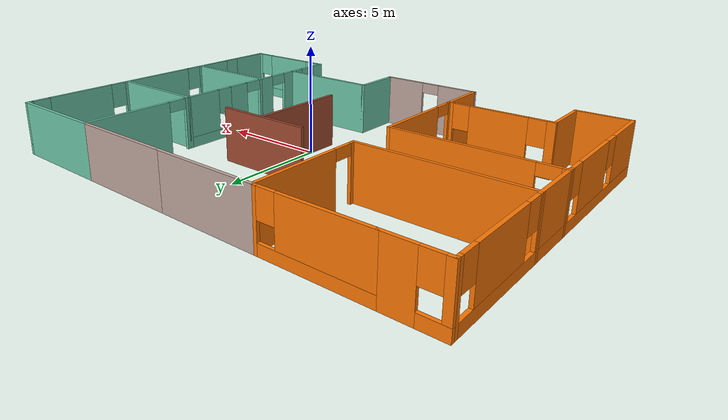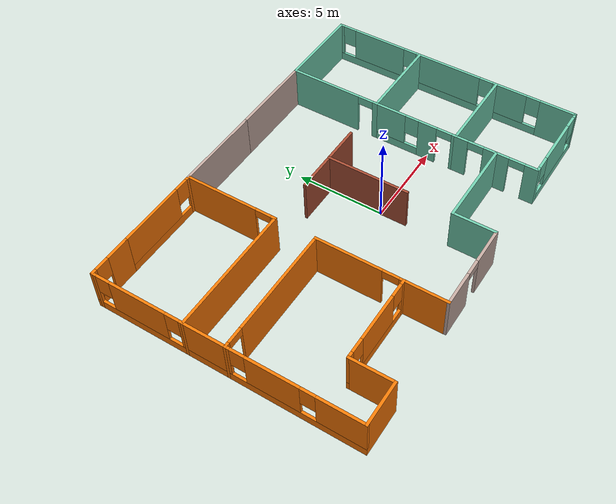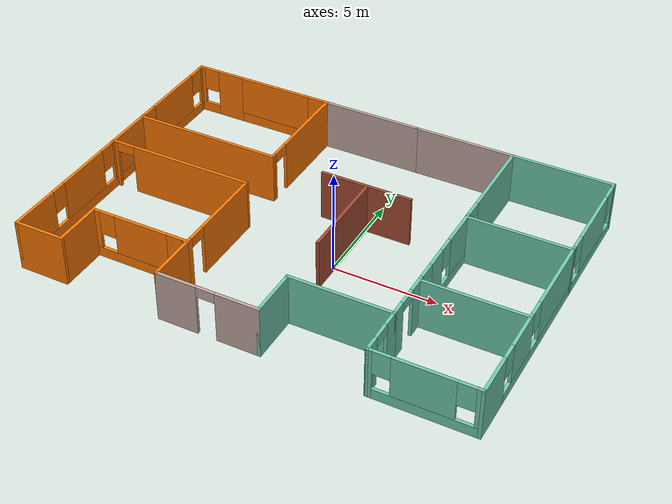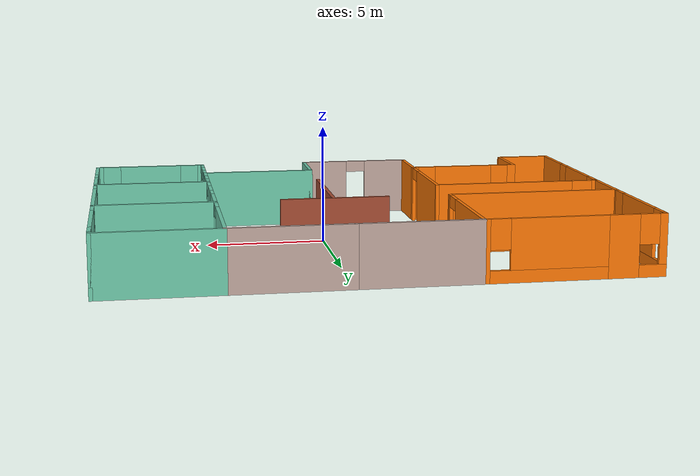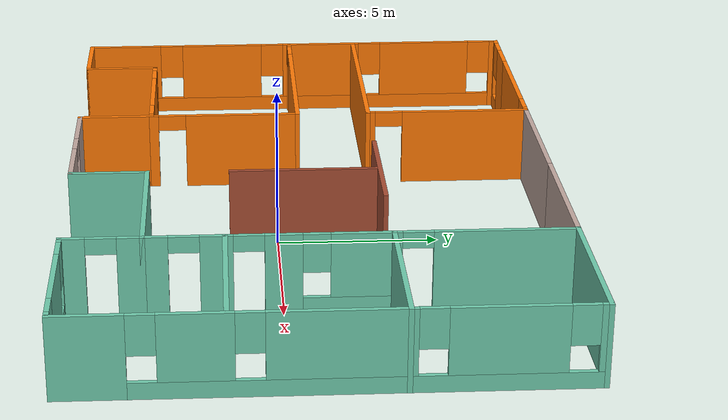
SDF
<?xml version='1.0'?>
<sdf version='1.6'>
  <model name='World_1'>
    <pose frame=''>-1.185 1.055 0 0 -0 0</pose>
    <link name='Wall_10'>
      <pose frame=''>6.025 -3.9 0 0 -0 1.5708</pose>
      <visual name='Wall_10_Visual_0'>
        <pose frame=''>-0.849577 0 1.25 0 -0 0</pose>
        <geometry>
          <box>
            <size>0.800846 0.15 2.5</size>
          </box>
        </geometry>
        <material>
          <script>
            <uri>file://media/materials/scripts/gazebo.material</uri>
            <name>Gazebo/Grey</name>
          </script>
          <ambient>0.435294 0.796078 0.67451 1</ambient>
        </material>
        <meta>
          <layer>0</layer>
        </meta>
      </visual>
      <collision name='Wall_10_Collision_0'>
        <geometry>
          <box>
            <size>0.800846 0.15 2.5</size>
          </box>
        </geometry>
        <pose frame=''>-0.849577 0 1.25 0 -0 0</pose>
      </collision>
      <visual name='Wall_10_Visual_1'>
        <pose frame=''>0.850423 0 1.25 0 -0 0</pose>
        <geometry>
          <box>
            <size>0.799154 0.15 2.5</size>
          </box>
        </geometry>
        <material>
          <script>
            <uri>file://media/materials/scripts/gazebo.material</uri>
            <name>Gazebo/Grey</name>
          </script>
          <ambient>0.435294 0.796078 0.67451 1</ambient>
        </material>
        <meta>
          <layer>0</layer>
        </meta>
      </visual>
      <collision name='Wall_10_Collision_1'>
        <geometry>
          <box>
            <size>0.799154 0.15 2.5</size>
          </box>
        </geometry>
        <pose frame=''>0.850423 0 1.25 0 -0 0</pose>
      </collision>
      <visual name='Wall_10_Visual_2'>
        <pose frame=''>0.000846 0 2.25 0 -0 0</pose>
        <geometry>
          <box>
            <size>0.9 0.15 0.5</size>
          </box>
        </geometry>
        <material>
          <script>
            <uri>file://media/materials/scripts/gazebo.material</uri>
            <name>Gazebo/Grey</name>
          </script>
          <ambient>0.435294 0.796078 0.67451 1</ambient>
        </material>
        <meta>
          <layer>0</layer>
        </meta>
      </visual>
      <collision name='Wall_10_Collision_2'>
        <geometry>
          <box>
            <size>0.9 0.15 0.5</size>
          </box>
        </geometry>
        <pose frame=''>0.000846 0 2.25 0 -0 0</pose>
      </collision>
    </link>
    <link name='Wall_11'>
      <collision name='Wall_11_Collision'>
        <geometry>
          <box>
            <size>5 0.15 2.5</size>
          </box>
        </geometry>
        <pose frame=''>0 0 1.25 0 -0 0</pose>
      </collision>
      <visual name='Wall_11_Visual'>
        <pose frame=''>0 0 1.25 0 -0 0</pose>
        <geometry>
          <box>
            <size>5 0.15 2.5</size>
          </box>
        </geometry>
        <material>
          <script>
            <uri>file://media/materials/scripts/gazebo.material</uri>
            <name>Gazebo/Grey</name>
          </script>
          <ambient>0.435294 0.796078 0.67451 1</ambient>
        </material>
        <meta>
          <layer>0</layer>
        </meta>
      </visual>
      <pose frame=''>8.45 -2.725 0 0 -0 0</pose>
    </link>
    <link name='Wall_13'>
      <pose frame=''>6.025 -0.3 0 0 -0 1.5708</pose>
      <visual name='Wall_13_Visual_0'>
        <pose frame=''>-2.34458 0 1.25 0 -0 0</pose>
        <geometry>
          <box>
            <size>0.310846 0.15 2.5</size>
          </box>
        </geometry>
        <material>
          <script>
            <uri>file://media/materials/scripts/gazebo.material</uri>
            <name>Gazebo/Grey</name>
          </script>
          <ambient>0.435294 0.796078 0.67451 1</ambient>
        </material>
        <meta>
          <layer>0</layer>
        </meta>
      </visual>
      <collision name='Wall_13_Collision_0'>
        <geometry>
          <box>
            <size>0.310846 0.15 2.5</size>
          </box>
        </geometry>
        <pose frame=''>-2.34458 0 1.25 0 -0 0</pose>
      </collision>
      <visual name='Wall_13_Visual_1'>
        <pose frame=''>-0.744154 0 1.25 0 -0 0</pose>
        <geometry>
          <box>
            <size>1.09 0.15 2.5</size>
          </box>
        </geometry>
        <material>
          <script>
            <uri>file://media/materials/scripts/gazebo.material</uri>
            <name>Gazebo/Grey</name>
          </script>
          <ambient>0.435294 0.796078 0.67451 1</ambient>
        </material>
        <meta>
          <layer>0</layer>
        </meta>
      </visual>
      <collision name='Wall_13_Collision_1'>
        <geometry>
          <box>
            <size>1.09 0.15 2.5</size>
          </box>
        </geometry>
        <pose frame=''>-0.744154 0 1.25 0 -0 0</pose>
      </collision>
      <visual name='Wall_13_Visual_2'>
        <pose frame=''>1.15042 0 0.25 0 -0 0</pose>
        <geometry>
          <box>
            <size>2.69915 0.15 0.5</size>
          </box>
        </geometry>
        <material>
          <script>
            <uri>file://media/materials/scripts/gazebo.material</uri>
            <name>Gazebo/Grey</name>
          </script>
          <ambient>0.435294 0.796078 0.67451 1</ambient>
        </material>
        <meta>
          <layer>0</layer>
        </meta>
      </visual>
      <collision name='Wall_13_Collision_2'>
        <geometry>
          <box>
            <size>2.69915 0.15 0.5</size>
          </box>
        </geometry>
        <pose frame=''>1.15042 0 0.25 0 -0 0</pose>
      </collision>
      <visual name='Wall_13_Visual_3'>
        <pose frame=''>1.55042 0 1.5 0 -0 0</pose>
        <geometry>
          <box>
            <size>1.89915 0.15 2</size>
          </box>
        </geometry>
        <material>
          <script>
            <uri>file://media/materials/scripts/gazebo.material</uri>
            <name>Gazebo/Grey</name>
          </script>
          <ambient>0.435294 0.796078 0.67451 1</ambient>
        </material>
        <meta>
          <layer>0</layer>
        </meta>
      </visual>
      <collision name='Wall_13_Collision_3'>
        <geometry>
          <box>
            <size>1.89915 0.15 2</size>
          </box>
        </geometry>
        <pose frame=''>1.55042 0 1.5 0 -0 0</pose>
      </collision>
      <visual name='Wall_13_Visual_4'>
        <pose frame=''>0.200846 0 1.9 0 -0 0</pose>
        <geometry>
          <box>
            <size>0.8 0.15 1.2</size>
          </box>
        </geometry>
        <material>
          <script>
            <uri>file://media/materials/scripts/gazebo.material</uri>
            <name>Gazebo/Grey</name>
          </script>
          <ambient>0.435294 0.796078 0.67451 1</ambient>
        </material>
        <meta>
          <layer>0</layer>
        </meta>
      </visual>
      <collision name='Wall_13_Collision_4'>
        <geometry>
          <box>
            <size>0.8 0.15 1.2</size>
          </box>
        </geometry>
        <pose frame=''>0.200846 0 1.9 0 -0 0</pose>
      </collision>
      <visual name='Wall_13_Visual_5'>
        <pose frame=''>-1.73915 0 2.25 0 -0 0</pose>
        <geometry>
          <box>
            <size>0.9 0.15 0.5</size>
          </box>
        </geometry>
        <material>
          <script>
            <uri>file://media/materials/scripts/gazebo.material</uri>
            <name>Gazebo/Grey</name>
          </script>
          <ambient>0.435294 0.796078 0.67451 1</ambient>
        </material>
        <meta>
          <layer>0</layer>
        </meta>
      </visual>
      <collision name='Wall_13_Collision_5'>
        <geometry>
          <box>
            <size>0.9 0.15 0.5</size>
          </box>
        </geometry>
        <pose frame=''>-1.73915 0 2.25 0 -0 0</pose>
      </collision>
    </link>
    <link name='Wall_14'>
      <collision name='Wall_14_Collision'>
        <geometry>
          <box>
            <size>5 0.15 2.5</size>
          </box>
        </geometry>
        <pose frame=''>0 0 1.25 0 -0 0</pose>
      </collision>
      <visual name='Wall_14_Visual'>
        <pose frame=''>0 0 1.25 0 -0 0</pose>
        <geometry>
          <box>
            <size>5 0.15 2.5</size>
          </box>
        </geometry>
        <material>
          <script>
            <uri>file://media/materials/scripts/gazebo.material</uri>
            <name>Gazebo/Grey</name>
          </script>
          <ambient>0.435294 0.796078 0.67451 1</ambient>
        </material>
        <meta>
          <layer>0</layer>
        </meta>
      </visual>
      <pose frame=''>8.45 2.125 0 0 -0 0</pose>
    </link>
    <link name='Wall_16'>
      <collision name='Wall_16_Collision'>
        <geometry>
          <box>
            <size>5 0.15 2.5</size>
          </box>
        </geometry>
        <pose frame=''>0 0 1.25 0 -0 0</pose>
      </collision>
      <visual name='Wall_16_Visual'>
        <pose frame=''>0 0 1.25 0 -0 0</pose>
        <geometry>
          <box>
            <size>5 0.15 2.5</size>
          </box>
        </geometry>
        <material>
          <script>
            <uri>file://media/materials/scripts/gazebo.material</uri>
            <name>Gazebo/Grey</name>
          </script>
          <ambient>0.435294 0.796078 0.67451 1</ambient>
        </material>
        <meta>
          <layer>0</layer>
        </meta>
      </visual>
      <pose frame=''>8.45 7.425 0 0 -0 3.14159</pose>
    </link>
    <link name='Wall_17'>
      <pose frame=''>6.025 4.775 0 0 0 -1.5708</pose>
      <visual name='Wall_17_Visual_0'>
        <pose frame=''>-0.605423 0 1.25 0 -0 0</pose>
        <geometry>
          <box>
            <size>4.23915 0.15 2.5</size>
          </box>
        </geometry>
        <material>
          <script>
            <uri>file://media/materials/scripts/gazebo.material</uri>
            <name>Gazebo/Grey</name>
          </script>
          <ambient>0.435294 0.796078 0.67451 1</ambient>
        </material>
        <meta>
          <layer>0</layer>
        </meta>
      </visual>
      <collision name='Wall_17_Collision_0'>
        <geometry>
          <box>
            <size>4.23915 0.15 2.5</size>
          </box>
        </geometry>
        <pose frame=''>-0.605423 0 1.25 0 -0 0</pose>
      </collision>
      <visual name='Wall_17_Visual_1'>
        <pose frame=''>2.56958 0 1.25 0 -0 0</pose>
        <geometry>
          <box>
            <size>0.310846 0.15 2.5</size>
          </box>
        </geometry>
        <material>
          <script>
            <uri>file://media/materials/scripts/gazebo.material</uri>
            <name>Gazebo/Grey</name>
          </script>
          <ambient>0.435294 0.796078 0.67451 1</ambient>
        </material>
        <meta>
          <layer>0</layer>
        </meta>
      </visual>
      <collision name='Wall_17_Collision_1'>
        <geometry>
          <box>
            <size>0.310846 0.15 2.5</size>
          </box>
        </geometry>
        <pose frame=''>2.56958 0 1.25 0 -0 0</pose>
      </collision>
      <visual name='Wall_17_Visual_2'>
        <pose frame=''>1.96415 0 2.25 0 -0 0</pose>
        <geometry>
          <box>
            <size>0.9 0.15 0.5</size>
          </box>
        </geometry>
        <material>
          <script>
            <uri>file://media/materials/scripts/gazebo.material</uri>
            <name>Gazebo/Grey</name>
          </script>
          <ambient>0.435294 0.796078 0.67451 1</ambient>
        </material>
        <meta>
          <layer>0</layer>
        </meta>
      </visual>
      <collision name='Wall_17_Collision_2'>
        <geometry>
          <box>
            <size>0.9 0.15 0.5</size>
          </box>
        </geometry>
        <pose frame=''>1.96415 0 2.25 0 -0 0</pose>
      </collision>
    </link>
    <link name='Wall_19'>
      <collision name='Wall_19_Collision'>
        <geometry>
          <box>
            <size>2.5 0.15 2.5</size>
          </box>
        </geometry>
        <pose frame=''>0 0 1.25 0 -0 0</pose>
      </collision>
      <visual name='Wall_19_Visual'>
        <pose frame=''>0 0 1.25 0 -0 0</pose>
        <geometry>
          <box>
            <size>2.5 0.15 2.5</size>
          </box>
        </geometry>
        <material>
          <script>
            <uri>file://media/materials/scripts/gazebo.material</uri>
            <name>Gazebo/Grey</name>
          </script>
          <ambient>0.996078 0.47451 0.0196078 1</ambient>
        </material>
        <meta>
          <layer>0</layer>
        </meta>
      </visual>
      <pose frame=''>-3.675 -6.25 0 0 -0 1.5708</pose>
    </link>
    <link name='Wall_2'>
      <pose frame=''>-1.25 -7.425 0 0 -0 0</pose>
      <visual name='Wall_2_Visual_0'>
        <pose frame=''>-1.5042 0 1.25 0 -0 0</pose>
        <geometry>
          <box>
            <size>1.99161 0.15 2.5</size>
          </box>
        </geometry>
        <material>
          <script>
            <uri>file://media/materials/scripts/gazebo.material</uri>
            <name>Gazebo/Grey</name>
          </script>
          <ambient>0.760784 0.662745 0.627451 1</ambient>
        </material>
        <meta>
          <layer>0</layer>
        </meta>
      </visual>
      <collision name='Wall_2_Collision_0'>
        <geometry>
          <box>
            <size>1.99161 0.15 2.5</size>
          </box>
        </geometry>
        <pose frame=''>-1.5042 0 1.25 0 -0 0</pose>
      </collision>
      <visual name='Wall_2_Visual_1'>
        <pose frame=''>1.4458 0 1.25 0 -0 0</pose>
        <geometry>
          <box>
            <size>2.10839 0.15 2.5</size>
          </box>
        </geometry>
        <material>
          <script>
            <uri>file://media/materials/scripts/gazebo.material</uri>
            <name>Gazebo/Grey</name>
          </script>
          <ambient>0.760784 0.662745 0.627451 1</ambient>
        </material>
        <meta>
          <layer>0</layer>
        </meta>
      </visual>
      <collision name='Wall_2_Collision_1'>
        <geometry>
          <box>
            <size>2.10839 0.15 2.5</size>
          </box>
        </geometry>
        <pose frame=''>1.4458 0 1.25 0 -0 0</pose>
      </collision>
      <visual name='Wall_2_Visual_2'>
        <pose frame=''>-0.058393 0 2.25 0 -0 0</pose>
        <geometry>
          <box>
            <size>0.9 0.15 0.5</size>
          </box>
        </geometry>
        <material>
          <script>
            <uri>file://media/materials/scripts/gazebo.material</uri>
            <name>Gazebo/Grey</name>
          </script>
          <ambient>0.760784 0.662745 0.627451 1</ambient>
        </material>
        <meta>
          <layer>0</layer>
        </meta>
      </visual>
      <collision name='Wall_2_Collision_2'>
        <geometry>
          <box>
            <size>0.9 0.15 0.5</size>
          </box>
        </geometry>
        <pose frame=''>-0.058393 0 2.25 0 -0 0</pose>
      </collision>
    </link>
    <link name='Wall_21'>
      <pose frame=''>-6.1 -5.075 0 0 -0 3.14159</pose>
      <visual name='Wall_21_Visual_0'>
        <pose frame=''>-2.34529 0 1.25 0 -0 0</pose>
        <geometry>
          <box>
            <size>0.309417 0.15 2.5</size>
          </box>
        </geometry>
        <material>
          <script>
            <uri>file://media/materials/scripts/gazebo.material</uri>
            <name>Gazebo/Grey</name>
          </script>
          <ambient>0.996078 0.47451 0.0196078 1</ambient>
        </material>
        <meta>
          <layer>0</layer>
        </meta>
      </visual>
      <collision name='Wall_21_Collision_0'>
        <geometry>
          <box>
            <size>0.309417 0.15 2.5</size>
          </box>
        </geometry>
        <pose frame=''>-2.34529 0 1.25 0 -0 0</pose>
      </collision>
      <visual name='Wall_21_Visual_1'>
        <pose frame=''>0.154709 0 0.25 0 -0 0</pose>
        <geometry>
          <box>
            <size>4.69058 0.15 0.5</size>
          </box>
        </geometry>
        <material>
          <script>
            <uri>file://media/materials/scripts/gazebo.material</uri>
            <name>Gazebo/Grey</name>
          </script>
          <ambient>0.996078 0.47451 0.0196078 1</ambient>
        </material>
        <meta>
          <layer>0</layer>
        </meta>
      </visual>
      <collision name='Wall_21_Collision_1'>
        <geometry>
          <box>
            <size>4.69058 0.15 0.5</size>
          </box>
        </geometry>
        <pose frame=''>0.154709 0 0.25 0 -0 0</pose>
      </collision>
      <visual name='Wall_21_Visual_2'>
        <pose frame=''>-0.040702 0 1.5 0 -0 0</pose>
        <geometry>
          <box>
            <size>2.69976 0.15 2</size>
          </box>
        </geometry>
        <material>
          <script>
            <uri>file://media/materials/scripts/gazebo.material</uri>
            <name>Gazebo/Grey</name>
          </script>
          <ambient>0.996078 0.47451 0.0196078 1</ambient>
        </material>
        <meta>
          <layer>0</layer>
        </meta>
      </visual>
      <collision name='Wall_21_Collision_2'>
        <geometry>
          <box>
            <size>2.69976 0.15 2</size>
          </box>
        </geometry>
        <pose frame=''>-0.040702 0 1.5 0 -0 0</pose>
      </collision>
      <visual name='Wall_21_Visual_3'>
        <pose frame=''>2.30459 0 1.5 0 -0 0</pose>
        <geometry>
          <box>
            <size>0.390821 0.15 2</size>
          </box>
        </geometry>
        <material>
          <script>
            <uri>file://media/materials/scripts/gazebo.material</uri>
            <name>Gazebo/Grey</name>
          </script>
          <ambient>0.996078 0.47451 0.0196078 1</ambient>
        </material>
        <meta>
          <layer>0</layer>
        </meta>
      </visual>
      <collision name='Wall_21_Collision_3'>
        <geometry>
          <box>
            <size>0.390821 0.15 2</size>
          </box>
        </geometry>
        <pose frame=''>2.30459 0 1.5 0 -0 0</pose>
      </collision>
      <visual name='Wall_21_Visual_4'>
        <pose frame=''>-1.79058 0 1.9 0 -0 0</pose>
        <geometry>
          <box>
            <size>0.8 0.15 1.2</size>
          </box>
        </geometry>
        <material>
          <script>
            <uri>file://media/materials/scripts/gazebo.material</uri>
            <name>Gazebo/Grey</name>
          </script>
          <ambient>0.996078 0.47451 0.0196078 1</ambient>
        </material>
        <meta>
          <layer>0</layer>
        </meta>
      </visual>
      <collision name='Wall_21_Collision_4'>
        <geometry>
          <box>
            <size>0.8 0.15 1.2</size>
          </box>
        </geometry>
        <pose frame=''>-1.79058 0 1.9 0 -0 0</pose>
      </collision>
      <visual name='Wall_21_Visual_5'>
        <pose frame=''>1.70918 0 1.9 0 -0 0</pose>
        <geometry>
          <box>
            <size>0.8 0.15 1.2</size>
          </box>
        </geometry>
        <material>
          <script>
            <uri>file://media/materials/scripts/gazebo.material</uri>
            <name>Gazebo/Grey</name>
          </script>
          <ambient>0.996078 0.47451 0.0196078 1</ambient>
        </material>
        <meta>
          <layer>0</layer>
        </meta>
      </visual>
      <collision name='Wall_21_Collision_5'>
        <geometry>
          <box>
            <size>0.8 0.15 1.2</size>
          </box>
        </geometry>
        <pose frame=''>1.70918 0 1.9 0 -0 0</pose>
      </collision>
    </link>
    <link name='Wall_3'>
      <collision name='Wall_3_Collision'>
        <geometry>
          <box>
            <size>2.5 0.15 2.5</size>
          </box>
        </geometry>
        <pose frame=''>0 0 1.25 0 -0 0</pose>
      </collision>
      <visual name='Wall_3_Visual'>
        <pose frame=''>0 0 1.25 0 -0 0</pose>
        <geometry>
          <box>
            <size>2.5 0.15 2.5</size>
          </box>
        </geometry>
        <material>
          <script>
            <uri>file://media/materials/scripts/gazebo.material</uri>
            <name>Gazebo/Grey</name>
          </script>
          <ambient>0.435294 0.796078 0.67451 1</ambient>
        </material>
        <meta>
          <layer>0</layer>
        </meta>
      </visual>
      <pose frame=''>1.175 -6.25 0 0 -0 1.5708</pose>
    </link>
    <link name='Wall_34'>
      <collision name='Wall_34_Collision'>
        <geometry>
          <box>
            <size>2.5 0.15 2.5</size>
          </box>
        </geometry>
        <pose frame=''>0 0 1.25 0 -0 0</pose>
      </collision>
      <visual name='Wall_34_Visual'>
        <pose frame=''>0 0 1.25 0 -0 0</pose>
        <geometry>
          <box>
            <size>2.5 0.15 2.5</size>
          </box>
        </geometry>
        <material>
          <script>
            <uri>file://media/materials/scripts/gazebo.material</uri>
            <name>Gazebo/Grey</name>
          </script>
          <ambient>0.996078 0.47451 0.0196078 1</ambient>
        </material>
        <meta>
          <layer>0</layer>
        </meta>
      </visual>
      <pose frame=''>-8.525 -6.25 0 0 0 -1.5708</pose>
    </link>
    <link name='Wall_38'>
      <collision name='Wall_38_Collision'>
        <geometry>
          <box>
            <size>5 0.15 2.5</size>
          </box>
        </geometry>
        <pose frame=''>0 0 1.25 0 -0 0</pose>
      </collision>
      <visual name='Wall_38_Visual'>
        <pose frame=''>0 0 1.25 0 -0 0</pose>
        <geometry>
          <box>
            <size>5 0.15 2.5</size>
          </box>
        </geometry>
        <material>
          <script>
            <uri>file://media/materials/scripts/gazebo.material</uri>
            <name>Gazebo/Grey</name>
          </script>
          <ambient>0.760784 0.662745 0.627451 1</ambient>
        </material>
        <meta>
          <layer>0</layer>
        </meta>
      </visual>
      <pose frame=''>3.6 7.425 0 0 -0 3.14159</pose>
    </link>
    <link name='Wall_39'>
      <collision name='Wall_39_Collision'>
        <geometry>
          <box>
            <size>5 0.15 2.5</size>
          </box>
        </geometry>
        <pose frame=''>0 0 1.25 0 -0 0</pose>
      </collision>
      <visual name='Wall_39_Visual'>
        <pose frame=''>0 0 1.25 0 -0 0</pose>
        <geometry>
          <box>
            <size>5 0.15 2.5</size>
          </box>
        </geometry>
        <material>
          <script>
            <uri>file://media/materials/scripts/gazebo.material</uri>
            <name>Gazebo/Grey</name>
          </script>
          <ambient>0.760784 0.662745 0.627451 1</ambient>
        </material>
        <meta>
          <layer>0</layer>
        </meta>
      </visual>
      <pose frame=''>-1.25 7.425 0 0 -0 3.14159</pose>
    </link>
    <link name='Wall_4'>
      <collision name='Wall_4_Collision'>
        <geometry>
          <box>
            <size>5 0.15 2.5</size>
          </box>
        </geometry>
        <pose frame=''>0 0 1.25 0 -0 0</pose>
      </collision>
      <visual name='Wall_4_Visual'>
        <pose frame=''>0 0 1.25 0 -0 0</pose>
        <geometry>
          <box>
            <size>5 0.15 2.5</size>
          </box>
        </geometry>
        <material>
          <script>
            <uri>file://media/materials/scripts/gazebo.material</uri>
            <name>Gazebo/Grey</name>
          </script>
          <ambient>0.435294 0.796078 0.67451 1</ambient>
        </material>
        <meta>
          <layer>0</layer>
        </meta>
      </visual>
      <pose frame=''>3.6 -5.075 0 0 -0 0</pose>
    </link>
    <link name='Wall_40'>
      <pose frame=''>-6.1 7.425 0 0 -0 3.14159</pose>
      <visual name='Wall_40_Visual_0'>
        <pose frame=''>-2.3458 0 1.25 0 -0 0</pose>
        <geometry>
          <box>
            <size>0.308393 0.15 2.5</size>
          </box>
        </geometry>
        <material>
          <script>
            <uri>file://media/materials/scripts/gazebo.material</uri>
            <name>Gazebo/Grey</name>
          </script>
          <ambient>0.996078 0.47451 0.0196078 1</ambient>
        </material>
        <meta>
          <layer>0</layer>
        </meta>
      </visual>
      <collision name='Wall_40_Collision_0'>
        <geometry>
          <box>
            <size>0.308393 0.15 2.5</size>
          </box>
        </geometry>
        <pose frame=''>-2.3458 0 1.25 0 -0 0</pose>
      </collision>
      <visual name='Wall_40_Visual_1'>
        <pose frame=''>0.154197 0 0.25 0 -0 0</pose>
        <geometry>
          <box>
            <size>4.69161 0.15 0.5</size>
          </box>
        </geometry>
        <material>
          <script>
            <uri>file://media/materials/scripts/gazebo.material</uri>
            <name>Gazebo/Grey</name>
          </script>
          <ambient>0.996078 0.47451 0.0196078 1</ambient>
        </material>
        <meta>
          <layer>0</layer>
        </meta>
      </visual>
      <collision name='Wall_40_Collision_1'>
        <geometry>
          <box>
            <size>4.69161 0.15 0.5</size>
          </box>
        </geometry>
        <pose frame=''>0.154197 0 0.25 0 -0 0</pose>
      </collision>
      <visual name='Wall_40_Visual_2'>
        <pose frame=''>0.554197 0 1.5 0 -0 0</pose>
        <geometry>
          <box>
            <size>3.89161 0.15 2</size>
          </box>
        </geometry>
        <material>
          <script>
            <uri>file://media/materials/scripts/gazebo.material</uri>
            <name>Gazebo/Grey</name>
          </script>
          <ambient>0.996078 0.47451 0.0196078 1</ambient>
        </material>
        <meta>
          <layer>0</layer>
        </meta>
      </visual>
      <collision name='Wall_40_Collision_2'>
        <geometry>
          <box>
            <size>3.89161 0.15 2</size>
          </box>
        </geometry>
        <pose frame=''>0.554197 0 1.5 0 -0 0</pose>
      </collision>
      <visual name='Wall_40_Visual_3'>
        <pose frame=''>-1.79161 0 1.9 0 -0 0</pose>
        <geometry>
          <box>
            <size>0.8 0.15 1.2</size>
          </box>
        </geometry>
        <material>
          <script>
            <uri>file://media/materials/scripts/gazebo.material</uri>
            <name>Gazebo/Grey</name>
          </script>
          <ambient>0.996078 0.47451 0.0196078 1</ambient>
        </material>
        <meta>
          <layer>0</layer>
        </meta>
      </visual>
      <collision name='Wall_40_Collision_3'>
        <geometry>
          <box>
            <size>0.8 0.15 1.2</size>
          </box>
        </geometry>
        <pose frame=''>-1.79161 0 1.9 0 -0 0</pose>
      </collision>
    </link>
    <link name='Wall_43'>
      <collision name='Wall_43_Collision'>
        <geometry>
          <box>
            <size>2.5 0.15 2.5</size>
          </box>
        </geometry>
        <pose frame=''>0 0 1.25 0 -0 0</pose>
      </collision>
      <visual name='Wall_43_Visual'>
        <pose frame=''>0 0 1.25 0 -0 0</pose>
        <geometry>
          <box>
            <size>2.5 0.15 2.5</size>
          </box>
        </geometry>
        <material>
          <script>
            <uri>file://media/materials/scripts/gazebo.material</uri>
            <name>Gazebo/Grey</name>
          </script>
          <ambient>0.996078 0.47451 0.0196078 1</ambient>
        </material>
        <meta>
          <layer>0</layer>
        </meta>
      </visual>
      <pose frame=''>-9.7 -7.425 0 0 -0 3.14159</pose>
    </link>
    <link name='Wall_45'>
      <pose frame=''>-9.7 7.425 0 0 -0 3.14159</pose>
      <visual name='Wall_45_Visual_0'>
        <pose frame=''>-0.560804 0 1.25 0 -0 0</pose>
        <geometry>
          <box>
            <size>1.37839 0.15 2.5</size>
          </box>
        </geometry>
        <material>
          <script>
            <uri>file://media/materials/scripts/gazebo.material</uri>
            <name>Gazebo/Grey</name>
          </script>
          <ambient>0.996078 0.47451 0.0196078 1</ambient>
        </material>
        <meta>
          <layer>0</layer>
        </meta>
      </visual>
      <collision name='Wall_45_Collision_0'>
        <geometry>
          <box>
            <size>1.37839 0.15 2.5</size>
          </box>
        </geometry>
        <pose frame=''>-0.560804 0 1.25 0 -0 0</pose>
      </collision>
      <visual name='Wall_45_Visual_1'>
        <pose frame=''>0.689196 0 0.25 0 -0 0</pose>
        <geometry>
          <box>
            <size>1.12161 0.15 0.5</size>
          </box>
        </geometry>
        <material>
          <script>
            <uri>file://media/materials/scripts/gazebo.material</uri>
            <name>Gazebo/Grey</name>
          </script>
          <ambient>0.996078 0.47451 0.0196078 1</ambient>
        </material>
        <meta>
          <layer>0</layer>
        </meta>
      </visual>
      <collision name='Wall_45_Collision_1'>
        <geometry>
          <box>
            <size>1.12161 0.15 0.5</size>
          </box>
        </geometry>
        <pose frame=''>0.689196 0 0.25 0 -0 0</pose>
      </collision>
      <visual name='Wall_45_Visual_2'>
        <pose frame=''>1.0892 0 1.5 0 -0 0</pose>
        <geometry>
          <box>
            <size>0.321607 0.15 2</size>
          </box>
        </geometry>
        <material>
          <script>
            <uri>file://media/materials/scripts/gazebo.material</uri>
            <name>Gazebo/Grey</name>
          </script>
          <ambient>0.996078 0.47451 0.0196078 1</ambient>
        </material>
        <meta>
          <layer>0</layer>
        </meta>
      </visual>
      <collision name='Wall_45_Collision_2'>
        <geometry>
          <box>
            <size>0.321607 0.15 2</size>
          </box>
        </geometry>
        <pose frame=''>1.0892 0 1.5 0 -0 0</pose>
      </collision>
      <visual name='Wall_45_Visual_3'>
        <pose frame=''>0.528393 0 1.9 0 -0 0</pose>
        <geometry>
          <box>
            <size>0.8 0.15 1.2</size>
          </box>
        </geometry>
        <material>
          <script>
            <uri>file://media/materials/scripts/gazebo.material</uri>
            <name>Gazebo/Grey</name>
          </script>
          <ambient>0.996078 0.47451 0.0196078 1</ambient>
        </material>
        <meta>
          <layer>0</layer>
        </meta>
      </visual>
      <collision name='Wall_45_Collision_3'>
        <geometry>
          <box>
            <size>0.8 0.15 1.2</size>
          </box>
        </geometry>
        <pose frame=''>0.528393 0 1.9 0 -0 0</pose>
      </collision>
    </link>
    <link name='Wall_46'>
      <pose frame=''>-10.875 0 0 0 0 -1.5708</pose>
      <visual name='Wall_46_Visual_0'>
        <pose frame=''>-7.34042 0 1.25 0 -0 0</pose>
        <geometry>
          <box>
            <size>0.319154 0.15 2.5</size>
          </box>
        </geometry>
        <material>
          <script>
            <uri>file://media/materials/scripts/gazebo.material</uri>
            <name>Gazebo/Grey</name>
          </script>
          <ambient>0.996078 0.47451 0.0196078 1</ambient>
        </material>
        <meta>
          <layer>0</layer>
        </meta>
      </visual>
      <collision name='Wall_46_Collision_0'>
        <geometry>
          <box>
            <size>0.319154 0.15 2.5</size>
          </box>
        </geometry>
        <pose frame=''>-7.34042 0 1.25 0 -0 0</pose>
      </collision>
      <visual name='Wall_46_Visual_1'>
        <pose frame=''>0.159577 0 0.25 0 -0 0</pose>
        <geometry>
          <box>
            <size>14.6808 0.15 0.5</size>
          </box>
        </geometry>
        <material>
          <script>
            <uri>file://media/materials/scripts/gazebo.material</uri>
            <name>Gazebo/Grey</name>
          </script>
          <ambient>0.996078 0.47451 0.0196078 1</ambient>
        </material>
        <meta>
          <layer>0</layer>
        </meta>
      </visual>
      <collision name='Wall_46_Collision_1'>
        <geometry>
          <box>
            <size>14.6808 0.15 0.5</size>
          </box>
        </geometry>
        <pose frame=''>0.159577 0 0.25 0 -0 0</pose>
      </collision>
      <visual name='Wall_46_Visual_2'>
        <pose frame=''>-4.75585 0 1.5 0 -0 0</pose>
        <geometry>
          <box>
            <size>3.25 0.15 2</size>
          </box>
        </geometry>
        <material>
          <script>
            <uri>file://media/materials/scripts/gazebo.material</uri>
            <name>Gazebo/Grey</name>
          </script>
          <ambient>0.996078 0.47451 0.0196078 1</ambient>
        </material>
        <meta>
          <layer>0</layer>
        </meta>
      </visual>
      <collision name='Wall_46_Collision_2'>
        <geometry>
          <box>
            <size>3.25 0.15 2</size>
          </box>
        </geometry>
        <pose frame=''>-4.75585 0 1.5 0 -0 0</pose>
      </collision>
      <visual name='Wall_46_Visual_3'>
        <pose frame=''>-0.940846 0 1.5 0 -0 0</pose>
        <geometry>
          <box>
            <size>2.78 0.15 2</size>
          </box>
        </geometry>
        <material>
          <script>
            <uri>file://media/materials/scripts/gazebo.material</uri>
            <name>Gazebo/Grey</name>
          </script>
          <ambient>0.996078 0.47451 0.0196078 1</ambient>
        </material>
        <meta>
          <layer>0</layer>
        </meta>
      </visual>
      <collision name='Wall_46_Collision_3'>
        <geometry>
          <box>
            <size>2.78 0.15 2</size>
          </box>
        </geometry>
        <pose frame=''>-0.940846 0 1.5 0 -0 0</pose>
      </collision>
      <visual name='Wall_46_Visual_4'>
        <pose frame=''>2.68915 0 1.5 0 -0 0</pose>
        <geometry>
          <box>
            <size>2.88 0.15 2</size>
          </box>
        </geometry>
        <material>
          <script>
            <uri>file://media/materials/scripts/gazebo.material</uri>
            <name>Gazebo/Grey</name>
          </script>
          <ambient>0.996078 0.47451 0.0196078 1</ambient>
        </material>
        <meta>
          <layer>0</layer>
        </meta>
      </visual>
      <collision name='Wall_46_Collision_4'>
        <geometry>
          <box>
            <size>2.88 0.15 2</size>
          </box>
        </geometry>
        <pose frame=''>2.68915 0 1.5 0 -0 0</pose>
      </collision>
      <visual name='Wall_46_Visual_5'>
        <pose frame=''>6.21458 0 1.5 0 -0 0</pose>
        <geometry>
          <box>
            <size>2.57085 0.15 2</size>
          </box>
        </geometry>
        <material>
          <script>
            <uri>file://media/materials/scripts/gazebo.material</uri>
            <name>Gazebo/Grey</name>
          </script>
          <ambient>0.996078 0.47451 0.0196078 1</ambient>
        </material>
        <meta>
          <layer>0</layer>
        </meta>
      </visual>
      <collision name='Wall_46_Collision_5'>
        <geometry>
          <box>
            <size>2.57085 0.15 2</size>
          </box>
        </geometry>
        <pose frame=''>6.21458 0 1.5 0 -0 0</pose>
      </collision>
      <visual name='Wall_46_Visual_6'>
        <pose frame=''>-6.78085 0 1.9 0 -0 0</pose>
        <geometry>
          <box>
            <size>0.8 0.15 1.2</size>
          </box>
        </geometry>
        <material>
          <script>
            <uri>file://media/materials/scripts/gazebo.material</uri>
            <name>Gazebo/Grey</name>
          </script>
          <ambient>0.996078 0.47451 0.0196078 1</ambient>
        </material>
        <meta>
          <layer>0</layer>
        </meta>
      </visual>
      <collision name='Wall_46_Collision_6'>
        <geometry>
          <box>
            <size>0.8 0.15 1.2</size>
          </box>
        </geometry>
        <pose frame=''>-6.78085 0 1.9 0 -0 0</pose>
      </collision>
      <visual name='Wall_46_Visual_7'>
        <pose frame=''>-2.73085 0 1.9 0 -0 0</pose>
        <geometry>
          <box>
            <size>0.8 0.15 1.2</size>
          </box>
        </geometry>
        <material>
          <script>
            <uri>file://media/materials/scripts/gazebo.material</uri>
            <name>Gazebo/Grey</name>
          </script>
          <ambient>0.996078 0.47451 0.0196078 1</ambient>
        </material>
        <meta>
          <layer>0</layer>
        </meta>
      </visual>
      <collision name='Wall_46_Collision_7'>
        <geometry>
          <box>
            <size>0.8 0.15 1.2</size>
          </box>
        </geometry>
        <pose frame=''>-2.73085 0 1.9 0 -0 0</pose>
      </collision>
      <visual name='Wall_46_Visual_8'>
        <pose frame=''>0.849154 0 1.9 0 -0 0</pose>
        <geometry>
          <box>
            <size>0.8 0.15 1.2</size>
          </box>
        </geometry>
        <material>
          <script>
            <uri>file://media/materials/scripts/gazebo.material</uri>
            <name>Gazebo/Grey</name>
          </script>
          <ambient>0.996078 0.47451 0.0196078 1</ambient>
        </material>
        <meta>
          <layer>0</layer>
        </meta>
      </visual>
      <collision name='Wall_46_Collision_8'>
        <geometry>
          <box>
            <size>0.8 0.15 1.2</size>
          </box>
        </geometry>
        <pose frame=''>0.849154 0 1.9 0 -0 0</pose>
      </collision>
      <visual name='Wall_46_Visual_9'>
        <pose frame=''>4.52915 0 1.9 0 -0 0</pose>
        <geometry>
          <box>
            <size>0.8 0.15 1.2</size>
          </box>
        </geometry>
        <material>
          <script>
            <uri>file://media/materials/scripts/gazebo.material</uri>
            <name>Gazebo/Grey</name>
          </script>
          <ambient>0.996078 0.47451 0.0196078 1</ambient>
        </material>
        <meta>
          <layer>0</layer>
        </meta>
      </visual>
      <collision name='Wall_46_Collision_9'>
        <geometry>
          <box>
            <size>0.8 0.15 1.2</size>
          </box>
        </geometry>
        <pose frame=''>4.52915 0 1.9 0 -0 0</pose>
      </collision>
    </link>
    <link name='Wall_48'>
      <pose frame=''>-3.675 -2.65 0 0 -0 1.5708</pose>
      <visual name='Wall_48_Visual_0'>
        <pose frame=''>-2.34458 0 1.25 0 -0 0</pose>
        <geometry>
          <box>
            <size>0.310846 0.15 2.5</size>
          </box>
        </geometry>
        <material>
          <script>
            <uri>file://media/materials/scripts/gazebo.material</uri>
            <name>Gazebo/Grey</name>
          </script>
          <ambient>0.996078 0.47451 0.0196078 1</ambient>
        </material>
        <meta>
          <layer>0</layer>
        </meta>
      </visual>
      <collision name='Wall_48_Collision_0'>
        <geometry>
          <box>
            <size>0.310846 0.15 2.5</size>
          </box>
        </geometry>
        <pose frame=''>-2.34458 0 1.25 0 -0 0</pose>
      </collision>
      <visual name='Wall_48_Visual_1'>
        <pose frame=''>0.605423 0 1.25 0 -0 0</pose>
        <geometry>
          <box>
            <size>3.78915 0.15 2.5</size>
          </box>
        </geometry>
        <material>
          <script>
            <uri>file://media/materials/scripts/gazebo.material</uri>
            <name>Gazebo/Grey</name>
          </script>
          <ambient>0.996078 0.47451 0.0196078 1</ambient>
        </material>
        <meta>
          <layer>0</layer>
        </meta>
      </visual>
      <collision name='Wall_48_Collision_1'>
        <geometry>
          <box>
            <size>3.78915 0.15 2.5</size>
          </box>
        </geometry>
        <pose frame=''>0.605423 0 1.25 0 -0 0</pose>
      </collision>
      <visual name='Wall_48_Visual_2'>
        <pose frame=''>-1.73915 0 2.25 0 -0 0</pose>
        <geometry>
          <box>
            <size>0.9 0.15 0.5</size>
          </box>
        </geometry>
        <material>
          <script>
            <uri>file://media/materials/scripts/gazebo.material</uri>
            <name>Gazebo/Grey</name>
          </script>
          <ambient>0.996078 0.47451 0.0196078 1</ambient>
        </material>
        <meta>
          <layer>0</layer>
        </meta>
      </visual>
      <collision name='Wall_48_Collision_2'>
        <geometry>
          <box>
            <size>0.9 0.15 0.5</size>
          </box>
        </geometry>
        <pose frame=''>-1.73915 0 2.25 0 -0 0</pose>
      </collision>
    </link>
    <link name='Wall_5'>
      <pose frame=''>6.025 -6.25 0 0 0 -1.5708</pose>
      <visual name='Wall_5_Visual_0'>
        <pose frame=''>-0.845423 0 1.25 0 -0 0</pose>
        <geometry>
          <box>
            <size>0.809154 0.15 2.5</size>
          </box>
        </geometry>
        <material>
          <script>
            <uri>file://media/materials/scripts/gazebo.material</uri>
            <name>Gazebo/Grey</name>
          </script>
          <ambient>0.435294 0.796078 0.67451 1</ambient>
        </material>
        <meta>
          <layer>0</layer>
        </meta>
      </visual>
      <collision name='Wall_5_Collision_0'>
        <geometry>
          <box>
            <size>0.809154 0.15 2.5</size>
          </box>
        </geometry>
        <pose frame=''>-0.845423 0 1.25 0 -0 0</pose>
      </collision>
      <visual name='Wall_5_Visual_1'>
        <pose frame=''>0.854577 0 1.25 0 -0 0</pose>
        <geometry>
          <box>
            <size>0.790846 0.15 2.5</size>
          </box>
        </geometry>
        <material>
          <script>
            <uri>file://media/materials/scripts/gazebo.material</uri>
            <name>Gazebo/Grey</name>
          </script>
          <ambient>0.435294 0.796078 0.67451 1</ambient>
        </material>
        <meta>
          <layer>0</layer>
        </meta>
      </visual>
      <collision name='Wall_5_Collision_1'>
        <geometry>
          <box>
            <size>0.790846 0.15 2.5</size>
          </box>
        </geometry>
        <pose frame=''>0.854577 0 1.25 0 -0 0</pose>
      </collision>
      <visual name='Wall_5_Visual_2'>
        <pose frame=''>0.009154 0 2.25 0 -0 0</pose>
        <geometry>
          <box>
            <size>0.9 0.15 0.5</size>
          </box>
        </geometry>
        <material>
          <script>
            <uri>file://media/materials/scripts/gazebo.material</uri>
            <name>Gazebo/Grey</name>
          </script>
          <ambient>0.435294 0.796078 0.67451 1</ambient>
        </material>
        <meta>
          <layer>0</layer>
        </meta>
      </visual>
      <collision name='Wall_5_Collision_2'>
        <geometry>
          <box>
            <size>0.9 0.15 0.5</size>
          </box>
        </geometry>
        <pose frame=''>0.009154 0 2.25 0 -0 0</pose>
      </collision>
    </link>
    <link name='Wall_50'>
      <pose frame=''>-7.275 -0.225 0 0 -0 3.14159</pose>
      <visual name='Wall_50_Visual_0'>
        <pose frame=''>-0.605803 0 1.25 0 -0 0</pose>
        <geometry>
          <box>
            <size>6.13839 0.15 2.5</size>
          </box>
        </geometry>
        <material>
          <script>
            <uri>file://media/materials/scripts/gazebo.material</uri>
            <name>Gazebo/Grey</name>
          </script>
          <ambient>0.996078 0.47451 0.0196078 1</ambient>
        </material>
        <meta>
          <layer>0</layer>
        </meta>
      </visual>
      <collision name='Wall_50_Collision_0'>
        <geometry>
          <box>
            <size>6.13839 0.15 2.5</size>
          </box>
        </geometry>
        <pose frame=''>-0.605803 0 1.25 0 -0 0</pose>
      </collision>
      <visual name='Wall_50_Visual_1'>
        <pose frame=''>3.5192 0 1.25 0 -0 0</pose>
        <geometry>
          <box>
            <size>0.311607 0.15 2.5</size>
          </box>
        </geometry>
        <material>
          <script>
            <uri>file://media/materials/scripts/gazebo.material</uri>
            <name>Gazebo/Grey</name>
          </script>
          <ambient>0.996078 0.47451 0.0196078 1</ambient>
        </material>
        <meta>
          <layer>0</layer>
        </meta>
      </visual>
      <collision name='Wall_50_Collision_1'>
        <geometry>
          <box>
            <size>0.311607 0.15 2.5</size>
          </box>
        </geometry>
        <pose frame=''>3.5192 0 1.25 0 -0 0</pose>
      </collision>
      <visual name='Wall_50_Visual_2'>
        <pose frame=''>2.91339 0 2.25 0 -0 0</pose>
        <geometry>
          <box>
            <size>0.9 0.15 0.5</size>
          </box>
        </geometry>
        <material>
          <script>
            <uri>file://media/materials/scripts/gazebo.material</uri>
            <name>Gazebo/Grey</name>
          </script>
          <ambient>0.996078 0.47451 0.0196078 1</ambient>
        </material>
        <meta>
          <layer>0</layer>
        </meta>
      </visual>
      <collision name='Wall_50_Collision_2'>
        <geometry>
          <box>
            <size>0.9 0.15 0.5</size>
          </box>
        </geometry>
        <pose frame=''>2.91339 0 2.25 0 -0 0</pose>
      </collision>
    </link>
    <link name='Wall_53'>
      <pose frame=''>-3.675 4.775 0 0 0 -1.5708</pose>
      <visual name='Wall_53_Visual_0'>
        <pose frame=''>-0.610423 0 1.25 0 -0 0</pose>
        <geometry>
          <box>
            <size>4.22915 0.15 2.5</size>
          </box>
        </geometry>
        <material>
          <script>
            <uri>file://media/materials/scripts/gazebo.material</uri>
            <name>Gazebo/Grey</name>
          </script>
          <ambient>0.996078 0.47451 0.0196078 1</ambient>
        </material>
        <meta>
          <layer>0</layer>
        </meta>
      </visual>
      <collision name='Wall_53_Collision_0'>
        <geometry>
          <box>
            <size>4.22915 0.15 2.5</size>
          </box>
        </geometry>
        <pose frame=''>-0.610423 0 1.25 0 -0 0</pose>
      </collision>
      <visual name='Wall_53_Visual_1'>
        <pose frame=''>2.56458 0 1.25 0 -0 0</pose>
        <geometry>
          <box>
            <size>0.320846 0.15 2.5</size>
          </box>
        </geometry>
        <material>
          <script>
            <uri>file://media/materials/scripts/gazebo.material</uri>
            <name>Gazebo/Grey</name>
          </script>
          <ambient>0.996078 0.47451 0.0196078 1</ambient>
        </material>
        <meta>
          <layer>0</layer>
        </meta>
      </visual>
      <collision name='Wall_53_Collision_1'>
        <geometry>
          <box>
            <size>0.320846 0.15 2.5</size>
          </box>
        </geometry>
        <pose frame=''>2.56458 0 1.25 0 -0 0</pose>
      </collision>
      <visual name='Wall_53_Visual_2'>
        <pose frame=''>1.95415 0 2.25 0 -0 0</pose>
        <geometry>
          <box>
            <size>0.9 0.15 0.5</size>
          </box>
        </geometry>
        <material>
          <script>
            <uri>file://media/materials/scripts/gazebo.material</uri>
            <name>Gazebo/Grey</name>
          </script>
          <ambient>0.996078 0.47451 0.0196078 1</ambient>
        </material>
        <meta>
          <layer>0</layer>
        </meta>
      </visual>
      <collision name='Wall_53_Collision_2'>
        <geometry>
          <box>
            <size>0.9 0.15 0.5</size>
          </box>
        </geometry>
        <pose frame=''>1.95415 0 2.25 0 -0 0</pose>
      </collision>
    </link>
    <link name='Wall_55'>
      <collision name='Wall_55_Collision'>
        <geometry>
          <box>
            <size>7.35 0.15 2.5</size>
          </box>
        </geometry>
        <pose frame=''>0 0 1.25 0 -0 0</pose>
      </collision>
      <visual name='Wall_55_Visual'>
        <pose frame=''>0 0 1.25 0 -0 0</pose>
        <geometry>
          <box>
            <size>7.35 0.15 2.5</size>
          </box>
        </geometry>
        <material>
          <script>
            <uri>file://media/materials/scripts/gazebo.material</uri>
            <name>Gazebo/Grey</name>
          </script>
          <ambient>0.996078 0.47451 0.0196078 1</ambient>
        </material>
        <meta>
          <layer>0</layer>
        </meta>
      </visual>
      <pose frame=''>-7.275 2.125 0 0 -0 3.14159</pose>
    </link>
    <link name='Wall_57'>
      <collision name='Wall_57_Collision'>
        <geometry>
          <box>
            <size>4.5 0.15 2.5</size>
          </box>
        </geometry>
        <pose frame=''>0 0 1.25 0 -0 0</pose>
      </collision>
      <visual name='Wall_57_Visual'>
        <pose frame=''>0 0 1.25 0 -0 0</pose>
        <geometry>
          <box>
            <size>4.5 0.15 2.5</size>
          </box>
        </geometry>
        <material>
          <script>
            <uri>file://media/materials/scripts/gazebo.material</uri>
            <name>Gazebo/Bricks</name>
          </script>
          <ambient>1 1 1 1</ambient>
        </material>
        <meta>
          <layer>0</layer>
        </meta>
      </visual>
      <pose frame=''>1.15173 2.11728 0 0 -0 0</pose>
    </link>
    <link name='Wall_59'>
      <collision name='Wall_59_Collision'>
        <geometry>
          <box>
            <size>4.75 0.15 2.5</size>
          </box>
        </geometry>
        <pose frame=''>0 0 1.25 0 -0 0</pose>
      </collision>
      <visual name='Wall_59_Visual'>
        <pose frame=''>0 0 1.25 0 -0 0</pose>
        <geometry>
          <box>
            <size>4.75 0.15 2.5</size>
          </box>
        </geometry>
        <material>
          <script>
            <uri>file://media/materials/scripts/gazebo.material</uri>
            <name>Gazebo/Bricks</name>
          </script>
          <ambient>1 1 1 1</ambient>
        </material>
        <meta>
          <layer>0</layer>
        </meta>
      </visual>
      <pose frame=''>1.20673 -0.182724 0 0 0 -1.5708</pose>
    </link>
    <link name='Wall_6'>
      <pose frame=''>8.45 -7.425 0 0 -0 0</pose>
      <visual name='Wall_6_Visual_0'>
        <pose frame=''>-2.3492 0 1.25 0 -0 0</pose>
        <geometry>
          <box>
            <size>0.301607 0.15 2.5</size>
          </box>
        </geometry>
        <material>
          <script>
            <uri>file://media/materials/scripts/gazebo.material</uri>
            <name>Gazebo/Grey</name>
          </script>
          <ambient>0.435294 0.796078 0.67451 1</ambient>
        </material>
        <meta>
          <layer>0</layer>
        </meta>
      </visual>
      <collision name='Wall_6_Collision_0'>
        <geometry>
          <box>
            <size>0.301607 0.15 2.5</size>
          </box>
        </geometry>
        <pose frame=''>-2.3492 0 1.25 0 -0 0</pose>
      </collision>
      <visual name='Wall_6_Visual_1'>
        <pose frame=''>0.150803 0 0.25 0 -0 0</pose>
        <geometry>
          <box>
            <size>4.69839 0.15 0.5</size>
          </box>
        </geometry>
        <material>
          <script>
            <uri>file://media/materials/scripts/gazebo.material</uri>
            <name>Gazebo/Grey</name>
          </script>
          <ambient>0.435294 0.796078 0.67451 1</ambient>
        </material>
        <meta>
          <layer>0</layer>
        </meta>
      </visual>
      <collision name='Wall_6_Collision_1'>
        <geometry>
          <box>
            <size>4.69839 0.15 0.5</size>
          </box>
        </geometry>
        <pose frame=''>0.150803 0 0.25 0 -0 0</pose>
      </collision>
      <visual name='Wall_6_Visual_2'>
        <pose frame=''>-0.013393 0 1.5 0 -0 0</pose>
        <geometry>
          <box>
            <size>2.77 0.15 2</size>
          </box>
        </geometry>
        <material>
          <script>
            <uri>file://media/materials/scripts/gazebo.material</uri>
            <name>Gazebo/Grey</name>
          </script>
          <ambient>0.435294 0.796078 0.67451 1</ambient>
        </material>
        <meta>
          <layer>0</layer>
        </meta>
      </visual>
      <collision name='Wall_6_Collision_2'>
        <geometry>
          <box>
            <size>2.77 0.15 2</size>
          </box>
        </geometry>
        <pose frame=''>-0.013393 0 1.5 0 -0 0</pose>
      </collision>
      <visual name='Wall_6_Visual_3'>
        <pose frame=''>2.3358 0 1.5 0 -0 0</pose>
        <geometry>
          <box>
            <size>0.328393 0.15 2</size>
          </box>
        </geometry>
        <material>
          <script>
            <uri>file://media/materials/scripts/gazebo.material</uri>
            <name>Gazebo/Grey</name>
          </script>
          <ambient>0.435294 0.796078 0.67451 1</ambient>
        </material>
        <meta>
          <layer>0</layer>
        </meta>
      </visual>
      <collision name='Wall_6_Collision_3'>
        <geometry>
          <box>
            <size>0.328393 0.15 2</size>
          </box>
        </geometry>
        <pose frame=''>2.3358 0 1.5 0 -0 0</pose>
      </collision>
      <visual name='Wall_6_Visual_4'>
        <pose frame=''>-1.79839 0 1.9 0 -0 0</pose>
        <geometry>
          <box>
            <size>0.8 0.15 1.2</size>
          </box>
        </geometry>
        <material>
          <script>
            <uri>file://media/materials/scripts/gazebo.material</uri>
            <name>Gazebo/Grey</name>
          </script>
          <ambient>0.435294 0.796078 0.67451 1</ambient>
        </material>
        <meta>
          <layer>0</layer>
        </meta>
      </visual>
      <collision name='Wall_6_Collision_4'>
        <geometry>
          <box>
            <size>0.8 0.15 1.2</size>
          </box>
        </geometry>
        <pose frame=''>-1.79839 0 1.9 0 -0 0</pose>
      </collision>
      <visual name='Wall_6_Visual_5'>
        <pose frame=''>1.77161 0 1.9 0 -0 0</pose>
        <geometry>
          <box>
            <size>0.8 0.15 1.2</size>
          </box>
        </geometry>
        <material>
          <script>
            <uri>file://media/materials/scripts/gazebo.material</uri>
            <name>Gazebo/Grey</name>
          </script>
          <ambient>0.435294 0.796078 0.67451 1</ambient>
        </material>
        <meta>
          <layer>0</layer>
        </meta>
      </visual>
      <collision name='Wall_6_Collision_5'>
        <geometry>
          <box>
            <size>0.8 0.15 1.2</size>
          </box>
        </geometry>
        <pose frame=''>1.77161 0 1.9 0 -0 0</pose>
      </collision>
    </link>
    <link name='Wall_8'>
      <pose frame=''>10.875 0 0 0 -0 1.5708</pose>
      <visual name='Wall_8_Visual_0'>
        <pose frame=''>-6.44458 0 1.25 0 -0 0</pose>
        <geometry>
          <box>
            <size>2.11085 0.15 2.5</size>
          </box>
        </geometry>
        <material>
          <script>
            <uri>file://media/materials/scripts/gazebo.material</uri>
            <name>Gazebo/Grey</name>
          </script>
          <ambient>0.435294 0.796078 0.67451 1</ambient>
        </material>
        <meta>
          <layer>0</layer>
        </meta>
      </visual>
      <collision name='Wall_8_Collision_0'>
        <geometry>
          <box>
            <size>2.11085 0.15 2.5</size>
          </box>
        </geometry>
        <pose frame=''>-6.44458 0 1.25 0 -0 0</pose>
      </collision>
      <visual name='Wall_8_Visual_1'>
        <pose frame=''>1.05542 0 0.25 0 -0 0</pose>
        <geometry>
          <box>
            <size>12.8892 0.15 0.5</size>
          </box>
        </geometry>
        <material>
          <script>
            <uri>file://media/materials/scripts/gazebo.material</uri>
            <name>Gazebo/Grey</name>
          </script>
          <ambient>0.435294 0.796078 0.67451 1</ambient>
        </material>
        <meta>
          <layer>0</layer>
        </meta>
      </visual>
      <collision name='Wall_8_Collision_1'>
        <geometry>
          <box>
            <size>12.8892 0.15 0.5</size>
          </box>
        </geometry>
        <pose frame=''>1.05542 0 0.25 0 -0 0</pose>
      </collision>
      <visual name='Wall_8_Visual_2'>
        <pose frame=''>-3.54915 0 1.5 0 -0 0</pose>
        <geometry>
          <box>
            <size>2.08 0.15 2</size>
          </box>
        </geometry>
        <material>
          <script>
            <uri>file://media/materials/scripts/gazebo.material</uri>
            <name>Gazebo/Grey</name>
          </script>
          <ambient>0.435294 0.796078 0.67451 1</ambient>
        </material>
        <meta>
          <layer>0</layer>
        </meta>
      </visual>
      <collision name='Wall_8_Collision_2'>
        <geometry>
          <box>
            <size>2.08 0.15 2</size>
          </box>
        </geometry>
        <pose frame=''>-3.54915 0 1.5 0 -0 0</pose>
      </collision>
      <visual name='Wall_8_Visual_3'>
        <pose frame=''>0.315846 0 1.5 0 -0 0</pose>
        <geometry>
          <box>
            <size>4.05 0.15 2</size>
          </box>
        </geometry>
        <material>
          <script>
            <uri>file://media/materials/scripts/gazebo.material</uri>
            <name>Gazebo/Grey</name>
          </script>
          <ambient>0.435294 0.796078 0.67451 1</ambient>
        </material>
        <meta>
          <layer>0</layer>
        </meta>
      </visual>
      <collision name='Wall_8_Collision_3'>
        <geometry>
          <box>
            <size>4.05 0.15 2</size>
          </box>
        </geometry>
        <pose frame=''>0.315846 0 1.5 0 -0 0</pose>
      </collision>
      <visual name='Wall_8_Visual_4'>
        <pose frame=''>4.76085 0 1.5 0 -0 0</pose>
        <geometry>
          <box>
            <size>3.24 0.15 2</size>
          </box>
        </geometry>
        <material>
          <script>
            <uri>file://media/materials/scripts/gazebo.material</uri>
            <name>Gazebo/Grey</name>
          </script>
          <ambient>0.435294 0.796078 0.67451 1</ambient>
        </material>
        <meta>
          <layer>0</layer>
        </meta>
      </visual>
      <collision name='Wall_8_Collision_4'>
        <geometry>
          <box>
            <size>3.24 0.15 2</size>
          </box>
        </geometry>
        <pose frame=''>4.76085 0 1.5 0 -0 0</pose>
      </collision>
      <visual name='Wall_8_Visual_5'>
        <pose frame=''>7.34042 0 1.5 0 -0 0</pose>
        <geometry>
          <box>
            <size>0.319154 0.15 2</size>
          </box>
        </geometry>
        <material>
          <script>
            <uri>file://media/materials/scripts/gazebo.material</uri>
            <name>Gazebo/Grey</name>
          </script>
          <ambient>0.435294 0.796078 0.67451 1</ambient>
        </material>
        <meta>
          <layer>0</layer>
        </meta>
      </visual>
      <collision name='Wall_8_Collision_5'>
        <geometry>
          <box>
            <size>0.319154 0.15 2</size>
          </box>
        </geometry>
        <pose frame=''>7.34042 0 1.5 0 -0 0</pose>
      </collision>
      <visual name='Wall_8_Visual_6'>
        <pose frame=''>-4.98915 0 1.9 0 -0 0</pose>
        <geometry>
          <box>
            <size>0.8 0.15 1.2</size>
          </box>
        </geometry>
        <material>
          <script>
            <uri>file://media/materials/scripts/gazebo.material</uri>
            <name>Gazebo/Grey</name>
          </script>
          <ambient>0.435294 0.796078 0.67451 1</ambient>
        </material>
        <meta>
          <layer>0</layer>
        </meta>
      </visual>
      <collision name='Wall_8_Collision_6'>
        <geometry>
          <box>
            <size>0.8 0.15 1.2</size>
          </box>
        </geometry>
        <pose frame=''>-4.98915 0 1.9 0 -0 0</pose>
      </collision>
      <visual name='Wall_8_Visual_7'>
        <pose frame=''>-2.10915 0 1.9 0 -0 0</pose>
        <geometry>
          <box>
            <size>0.8 0.15 1.2</size>
          </box>
        </geometry>
        <material>
          <script>
            <uri>file://media/materials/scripts/gazebo.material</uri>
            <name>Gazebo/Grey</name>
          </script>
          <ambient>0.435294 0.796078 0.67451 1</ambient>
        </material>
        <meta>
          <layer>0</layer>
        </meta>
      </visual>
      <collision name='Wall_8_Collision_7'>
        <geometry>
          <box>
            <size>0.8 0.15 1.2</size>
          </box>
        </geometry>
        <pose frame=''>-2.10915 0 1.9 0 -0 0</pose>
      </collision>
      <visual name='Wall_8_Visual_8'>
        <pose frame=''>2.74085 0 1.9 0 -0 0</pose>
        <geometry>
          <box>
            <size>0.8 0.15 1.2</size>
          </box>
        </geometry>
        <material>
          <script>
            <uri>file://media/materials/scripts/gazebo.material</uri>
            <name>Gazebo/Grey</name>
          </script>
          <ambient>0.435294 0.796078 0.67451 1</ambient>
        </material>
        <meta>
          <layer>0</layer>
        </meta>
      </visual>
      <collision name='Wall_8_Collision_8'>
        <geometry>
          <box>
            <size>0.8 0.15 1.2</size>
          </box>
        </geometry>
        <pose frame=''>2.74085 0 1.9 0 -0 0</pose>
      </collision>
      <visual name='Wall_8_Visual_9'>
        <pose frame=''>6.78085 0 1.9 0 -0 0</pose>
        <geometry>
          <box>
            <size>0.8 0.15 1.2</size>
          </box>
        </geometry>
        <material>
          <script>
            <uri>file://media/materials/scripts/gazebo.material</uri>
            <name>Gazebo/Grey</name>
          </script>
          <ambient>0.435294 0.796078 0.67451 1</ambient>
        </material>
        <meta>
          <layer>0</layer>
        </meta>
      </visual>
      <collision name='Wall_8_Collision_9'>
        <geometry>
          <box>
            <size>0.8 0.15 1.2</size>
          </box>
        </geometry>
        <pose frame=''>6.78085 0 1.9 0 -0 0</pose>
      </collision>
    </link>
    <static>1</static>
  </model>
</sdf>
